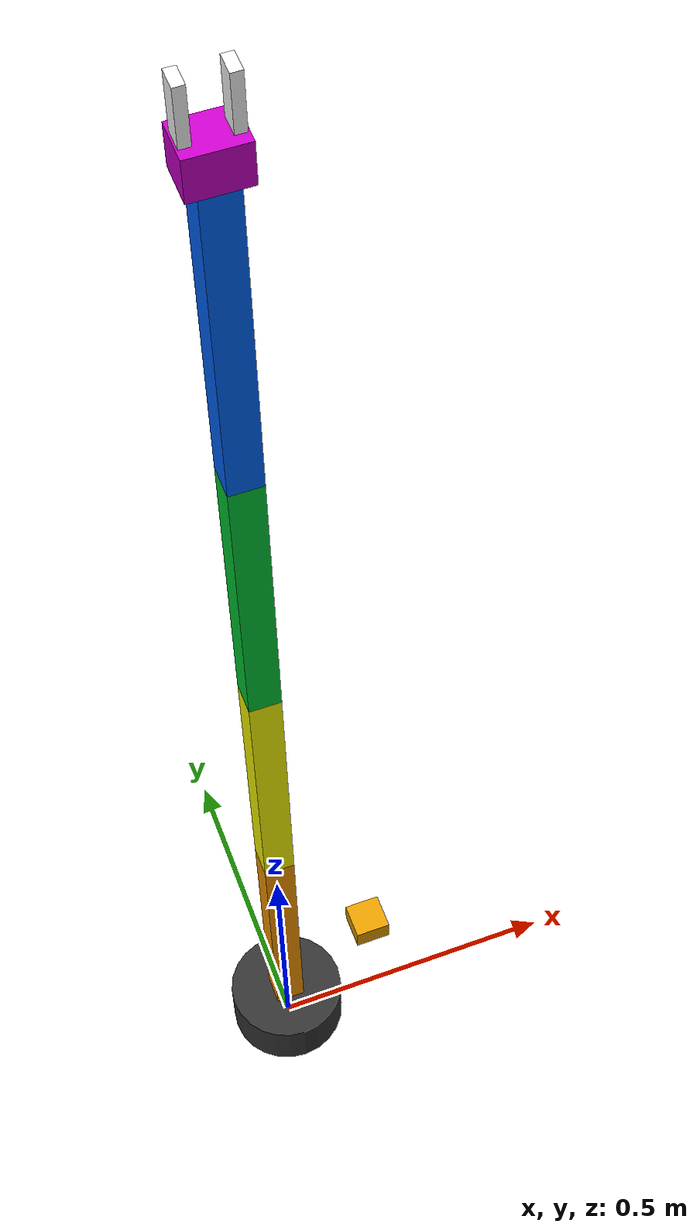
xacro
<?xml version="1.0"?>
<robot xmlns:xacro="http://www.ros.org/wiki/xacro" name="my_robot">

  <xacro:property name="base_radius" value="0.1"/>
  <xacro:property name="base_height" value="0.1"/>
  <xacro:property name="link_len" value="0.5"/>
  <xacro:property name="link_width" value="0.05"/>
  <xacro:property name="link_mass" value="1.0"/>

  <xacro:macro name="box_inertia" params="m w h d">
    <inertial>
      <mass value="${m}"/>
      <inertia ixx="${(m/12) * (h*h + d*d)}" ixy="0.0" ixz="0.0"
               iyy="${(m/12) * (w*w + d*d)}" iyz="0.0"
               izz="${(m/12) * (w*w + h*h)}"/>
    </inertial>
  </xacro:macro>

  <xacro:macro name="cylinder_inertia" params="m r h">
    <inertial>
      <mass value="${m}"/>
      <inertia ixx="${(m/12) * (3*r*r + h*h)}" ixy="0.0" ixz="0.0"
               iyy="${(m/12) * (3*r*r + h*h)}" iyz="0.0"
               izz="${(m/2) * (r*r)}"/>
    </inertial>
  </xacro:macro>

  <xacro:macro name="arm_link_macro" params="name color_name r g b">
    <link name="${name}">
      <visual>
        <geometry>
          <box size="${link_width} ${link_width} ${link_len}"/>
        </geometry>
        <origin xyz="0 0 ${link_len/2}" rpy="0 0 0"/>
        <material name="${color_name}">
          <color rgba="${r} ${g} ${b} 1"/>
        </material>
      </visual>
      <collision>
        <geometry>
          <box size="${link_width} ${link_width} ${link_len}"/>
        </geometry>
        <origin xyz="0 0 ${link_len/2}" rpy="0 0 0"/>
      </collision>
      <xacro:box_inertia m="${link_mass}" w="${link_width}" h="${link_len}" d="${link_width}"/>
    </link>
  </xacro:macro>

  <link name="base_link">
    <visual>
      <geometry>
        <cylinder length="${base_height}" radius="${base_radius}"/>
      </geometry>
      <origin xyz="0 0 ${base_height/2}" rpy="0 0 0"/>
      <material name="gray"><color rgba="0.2 0.2 0.2 1"/></material>
    </visual>
    <collision>
      <geometry><cylinder length="${base_height}" radius="${base_radius}"/></geometry>
      <origin xyz="0 0 ${base_height/2}" rpy="0 0 0"/>
    </collision>
    <xacro:cylinder_inertia m="10.0" r="${base_radius}" h="${base_height}"/>
  </link>

  <xacro:arm_link_macro name="link1" color_name="orange" r="1" g="0.6" b="0"/>

  <joint name="joint1" type="revolute">
    <parent link="base_link"/>
    <child link="link1"/>
    <origin xyz="0 0 ${base_height}" rpy="0 0 0"/>
    <axis xyz="0 0 1"/> <limit lower="-3.14159" upper="3.14159" effort="100" velocity="1.0"/>
  </joint>

  <xacro:arm_link_macro name="link2" color_name="yellow" r="1" g="1" b="0"/>

  <joint name="joint2" type="revolute">
    <parent link="link1"/>
    <child link="link2"/>
    <origin xyz="0 0 ${link_len}" rpy="0 0 0"/>
    <axis xyz="0 1 0"/> <limit lower="-1.57079" upper="1.57079" effort="100" velocity="1.0"/>
  </joint>

  <xacro:arm_link_macro name="link3" color_name="green" r="0" g="0.8" b="0.2"/>

  <joint name="joint3" type="revolute">
    <parent link="link2"/>
    <child link="link3"/>
    <origin xyz="0 0 ${link_len}" rpy="0 0 0"/>
    <axis xyz="0 1 0"/> <limit lower="-2.0944" upper="2.0944" effort="100" velocity="1.5"/>
  </joint>

  <xacro:arm_link_macro name="link4" color_name="blue" r="0" g="0.4" b="1"/>

  <joint name="joint4" type="revolute">
    <parent link="link3"/>
    <child link="link4"/>
    <origin xyz="0 0 ${link_len}" rpy="0 0 0"/>
    <axis xyz="0 0 1"/> <limit lower="-3.14159" upper="3.14159" effort="100" velocity="2.0"/>
  </joint>

  <link name="link_wrist">
    <visual>
      <geometry>
        <box size="0.08 0.06 0.06"/>
      </geometry>
      <origin xyz="0 0 0.03" rpy="0 0 0"/>
      <material name="magenta"><color rgba="0.8 0 0.8 1"/></material>
    </visual>
    <collision>
      <geometry>
        <box size="0.08 0.06 0.06"/>
      </geometry>
      <origin xyz="0 0 0.03" rpy="0 0 0"/>
    </collision>
    <xacro:box_inertia m="0.3" w="0.08" h="0.06" d="0.06"/>
  </link>

  <joint name="joint_wrist" type="revolute">
    <parent link="link4"/>
    <child link="link_wrist"/>
    <origin xyz="0 0 ${link_len}" rpy="0 0 0"/>
    <axis xyz="0 1 0"/>
    <limit lower="-1.5708" upper="1.5708" effort="50" velocity="2.5"/>
  </joint>

  <link name="finger1">
    <visual>
      <geometry>
        <box size="0.015 0.03 0.08"/>
      </geometry>
      <origin xyz="0 0 0.04" rpy="0 0 0"/>
      <material name="white"><color rgba="1 1 1 1"/></material>
    </visual>
    <collision>
      <geometry>
        <box size="0.015 0.03 0.08"/>
      </geometry>
      <origin xyz="0 0 0.04" rpy="0 0 0"/>
    </collision>
    <xacro:box_inertia m="0.05" w="0.015" h="0.03" d="0.08"/>
  </link>

  <joint name="joint_finger1" type="prismatic">
    <parent link="link_wrist"/>
    <child link="finger1"/>
    <origin xyz="-0.03 0 0.06" rpy="0 0 0"/>
    <axis xyz="1 0 0"/>
    <limit lower="0.0" upper="0.025" effort="20" velocity="0.2"/>
  </joint>

  <link name="finger2">
    <visual>
      <geometry>
        <box size="0.015 0.03 0.08"/>
      </geometry>
      <origin xyz="0 0 0.04" rpy="0 0 0"/>
      <material name="white"/>
    </visual>
    <collision>
      <geometry>
        <box size="0.015 0.03 0.08"/>
      </geometry>
      <origin xyz="0 0 0.04" rpy="0 0 0"/>
    </collision>
    <xacro:box_inertia m="0.05" w="0.015" h="0.03" d="0.08"/>
  </link>

  <joint name="joint_finger2" type="prismatic">
    <parent link="link_wrist"/>
    <child link="finger2"/>
    <origin xyz="0.03 0 0.06" rpy="0 0 0"/>
    <axis xyz="-1 0 0"/>
    <limit lower="0.0" upper="0.025" effort="20" velocity="0.2"/>
  </joint>

  <!-- ROS2 Control을 위한 시스템 정의 -->

  <!-- Ch07 7.2: standalone optical camera frame and RGB-D sensor -->
  <xacro:include filename="$(find vision_basics)/urdf/camera.xacro"/>

</robot>

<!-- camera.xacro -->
<robot xmlns:xacro="http://www.ros.org/wiki/xacro">
  <!-- Educational RGB-D camera fixed to the base. Optical X right, Y down, Z forward. -->
  <link name="camera_link">
    <visual><geometry><box size="0.06 0.06 0.04"/></geometry></visual>
    <collision><geometry><box size="0.06 0.06 0.04"/></geometry></collision>
    <inertial><mass value="0.05"/>
      <inertia ixx="0.00003" ixy="0" ixz="0" iyy="0.00003" iyz="0" izz="0.00003"/>
    </inertial>
  </link>
  <joint name="base_to_camera" type="fixed">
    <parent link="base_link"/><child link="camera_link"/>
    <origin xyz="0.16 0 0.25" rpy="0 0 0"/>
  </joint>
  <link name="camera_optical_frame"/>
  <joint name="camera_optical_joint" type="fixed">
    <parent link="camera_link"/><child link="camera_optical_frame"/>
    <origin xyz="0 0 0" rpy="-1.57079632679 0 -1.57079632679"/>
  </joint>
  <gazebo reference="camera_link">
    <sensor name="front_rgbd" type="rgbd_camera">
      <always_on>true</always_on><update_rate>30</update_rate>
      <topic>/camera</topic>
      <camera>
        <horizontal_fov>1.04719755</horizontal_fov>
        <image><width>640</width><height>480</height><format>R8G8B8</format></image>
        <clip><near>0.1</near><far>5.0</far></clip>
        <depth_camera><clip><near>0.1</near><far>5.0</far></clip></depth_camera>
      </camera>
    </sensor>
  </gazebo>
</robot>
